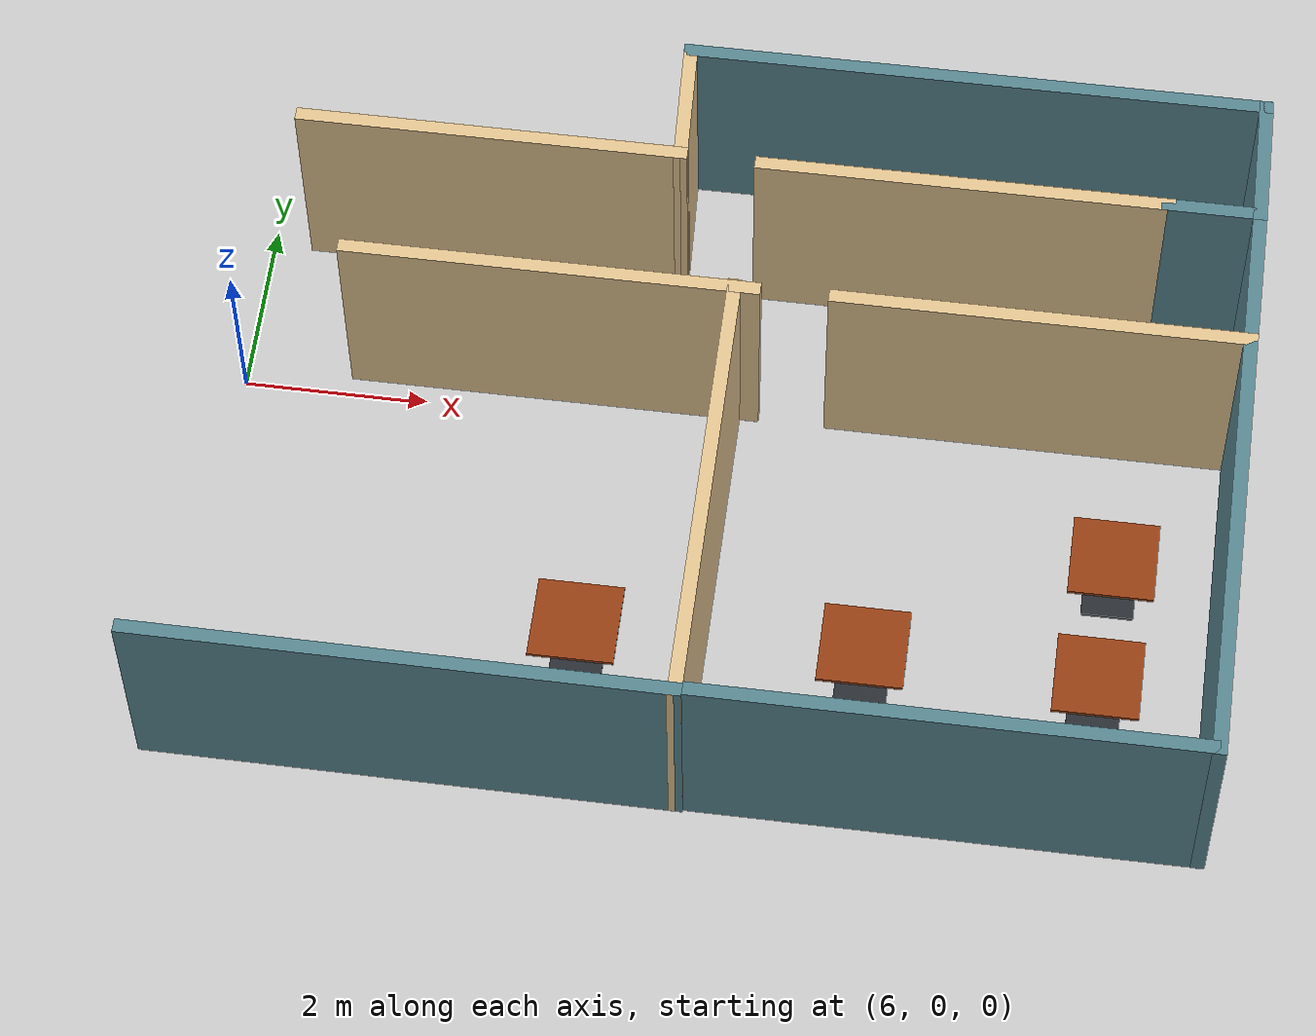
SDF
<sdf version="1.6">
 <world name="default">
  <model name="inco_planta_baja_0">
   <link name="Wall_126">
    <pose>9.78501 1.72965 0 0 -0 1.5708</pose>
    <visual name="Wall_126_Visual">
     <pose>0 0 1.25 0 -0 0</pose>
     <geometry><box><size>1.75 0.15 2.5</size></box></geometry>
     <material>
      <ambient>0.22 0.31 0.34 1</ambient>
      <diffuse>0.34 0.52 0.56 1</diffuse>
      <specular>0.05 0.05 0.05 1</specular>
      <emissive>0 0 0 1</emissive>
     </material>
    </visual>
    <collision name="Wall_126_Collision">
     <pose>0 0 1.25 0 -0 0</pose>
     <geometry><box><size>1.75 0.15 2.5</size></box></geometry>
     <surface>
      <friction>
       <ode><mu>1</mu><mu2>1</mu2><fdir1>0 0 0</fdir1><slip1>0</slip1><slip2>0</slip2></ode>
       <torsional>
        <coefficient>1</coefficient>
        <patch_radius>0</patch_radius>
        <surface_radius>0</surface_radius>
        <use_patch_radius>1</use_patch_radius>
        <ode><slip>0</slip></ode>
       </torsional>
      </friction>
      <bounce><restitution_coefficient>0</restitution_coefficient><threshold>1e+06</threshold></bounce>
      <contact>
       <collide_without_contact>0</collide_without_contact>
       <collide_without_contact_bitmask>1</collide_without_contact_bitmask>
       <collide_bitmask>1</collide_bitmask>
       <ode>
        <soft_cfm>0</soft_cfm>
        <soft_erp>0.2</soft_erp>
        <kp>1e+13</kp>
        <kd>1</kd>
        <max_vel>0.01</max_vel>
        <min_depth>0</min_depth>
       </ode>
       <bullet>
        <split_impulse>1</split_impulse>
        <split_impulse_penetration_threshold>-0.01</split_impulse_penetration_threshold>
        <soft_cfm>0</soft_cfm>
        <soft_erp>0.2</soft_erp>
        <kp>1e+13</kp>
        <kd>1</kd>
       </bullet>
      </contact>
     </surface>
    </collision>
   </link>
   <link name="Wall_127">
    <pose>9.29747 2.53004 0 0 -0 3.1408</pose>
    <visual name="Wall_127_Visual">
     <pose>0 0 1.25 0 -0 0</pose>
     <geometry><box><size>1.12508 0.15 2.5</size></box></geometry>
     <material>
      <ambient>0.22 0.31 0.34 1</ambient>
      <diffuse>0.34 0.52 0.56 1</diffuse>
      <specular>0.05 0.05 0.05 1</specular>
      <emissive>0 0 0 1</emissive>
     </material>
    </visual>
    <collision name="Wall_127_Collision">
     <pose>0 0 1.25 0 -0 0</pose>
     <geometry><box><size>1.12508 0.15 2.5</size></box></geometry>
     <surface>
      <friction>
       <ode><mu>1</mu><mu2>1</mu2><fdir1>0 0 0</fdir1><slip1>0</slip1><slip2>0</slip2></ode>
       <torsional>
        <coefficient>1</coefficient>
        <patch_radius>0</patch_radius>
        <surface_radius>0</surface_radius>
        <use_patch_radius>1</use_patch_radius>
        <ode><slip>0</slip></ode>
       </torsional>
      </friction>
      <bounce><restitution_coefficient>0</restitution_coefficient><threshold>1e+06</threshold></bounce>
      <contact>
       <collide_without_contact>0</collide_without_contact>
       <collide_without_contact_bitmask>1</collide_without_contact_bitmask>
       <collide_bitmask>1</collide_bitmask>
       <ode>
        <soft_cfm>0</soft_cfm>
        <soft_erp>0.2</soft_erp>
        <kp>1e+13</kp>
        <kd>1</kd>
        <max_vel>0.01</max_vel>
        <min_depth>0</min_depth>
       </ode>
       <bullet>
        <split_impulse>1</split_impulse>
        <split_impulse_penetration_threshold>-0.01</split_impulse_penetration_threshold>
        <soft_cfm>0</soft_cfm>
        <soft_erp>0.2</soft_erp>
        <kp>1e+13</kp>
        <kd>1</kd>
       </bullet>
      </contact>
     </surface>
    </collision>
   </link>
   <link name="Wall_132">
    <pose>1.56221 -3.9268 0 0 0 -0.003633</pose>
    <visual name="Wall_132_Visual">
     <pose>0 0 1.25 0 -0 0</pose>
     <geometry><box><size>5.75 0.15 2.5</size></box></geometry>
     <material>
      <ambient>0.22 0.31 0.34 1</ambient>
      <diffuse>0.34 0.52 0.56 1</diffuse>
      <specular>0.05 0.05 0.05 1</specular>
      <emissive>0 0 0 1</emissive>
     </material>
    </visual>
    <collision name="Wall_132_Collision">
     <pose>0 0 1.25 0 -0 0</pose>
     <geometry><box><size>5.75 0.15 2.5</size></box></geometry>
     <surface>
      <friction>
       <ode><mu>1</mu><mu2>1</mu2><fdir1>0 0 0</fdir1><slip1>0</slip1><slip2>0</slip2></ode>
       <torsional>
        <coefficient>1</coefficient>
        <patch_radius>0</patch_radius>
        <surface_radius>0</surface_radius>
        <use_patch_radius>1</use_patch_radius>
        <ode><slip>0</slip></ode>
       </torsional>
      </friction>
      <bounce><restitution_coefficient>0</restitution_coefficient><threshold>1e+06</threshold></bounce>
      <contact>
       <collide_without_contact>0</collide_without_contact>
       <collide_without_contact_bitmask>1</collide_without_contact_bitmask>
       <collide_bitmask>1</collide_bitmask>
       <ode>
        <soft_cfm>0</soft_cfm>
        <soft_erp>0.2</soft_erp>
        <kp>1e+13</kp>
        <kd>1</kd>
        <max_vel>0.01</max_vel>
        <min_depth>0</min_depth>
       </ode>
       <bullet>
        <split_impulse>1</split_impulse>
        <split_impulse_penetration_threshold>-0.01</split_impulse_penetration_threshold>
        <soft_cfm>0</soft_cfm>
        <soft_erp>0.2</soft_erp>
        <kp>1e+13</kp>
        <kd>1</kd>
       </bullet>
      </contact>
     </surface>
    </collision>
   </link>
   <link name="Wall_133">
    <pose>4.36221 -1.5018 0 0 -0 1.5708</pose>
    <visual name="Wall_133_Visual">
     <pose>0 0 1.25 0 -0 0</pose>
     <geometry><box><size>5.02034 0.15 2.5</size></box></geometry>
     <material>
      <ambient>0.55 0.48 0.36 1</ambient>
      <diffuse>0.88 0.76 0.56 1</diffuse>
      <specular>0.05 0.05 0.05 1</specular>
      <emissive>0 0 0 1</emissive>
     </material>
    </visual>
    <collision name="Wall_133_Collision">
     <pose>0 0 1.25 0 -0 0</pose>
     <geometry><box><size>5.02034 0.15 2.5</size></box></geometry>
     <surface>
      <friction>
       <ode><mu>1</mu><mu2>1</mu2><fdir1>0 0 0</fdir1><slip1>0</slip1><slip2>0</slip2></ode>
       <torsional>
        <coefficient>1</coefficient>
        <patch_radius>0</patch_radius>
        <surface_radius>0</surface_radius>
        <use_patch_radius>1</use_patch_radius>
        <ode><slip>0</slip></ode>
       </torsional>
      </friction>
      <bounce><restitution_coefficient>0</restitution_coefficient><threshold>1e+06</threshold></bounce>
      <contact>
       <collide_without_contact>0</collide_without_contact>
       <collide_without_contact_bitmask>1</collide_without_contact_bitmask>
       <collide_bitmask>1</collide_bitmask>
       <ode>
        <soft_cfm>0</soft_cfm>
        <soft_erp>0.2</soft_erp>
        <kp>1e+13</kp>
        <kd>1</kd>
        <max_vel>0.01</max_vel>
        <min_depth>0</min_depth>
       </ode>
       <bullet>
        <split_impulse>1</split_impulse>
        <split_impulse_penetration_threshold>-0.01</split_impulse_penetration_threshold>
        <soft_cfm>0</soft_cfm>
        <soft_erp>0.2</soft_erp>
        <kp>1e+13</kp>
        <kd>1</kd>
       </bullet>
      </contact>
     </surface>
    </collision>
   </link>
   <link name="Wall_135">
    <pose>7.03721 -3.91663 0 0 -0 0</pose>
    <visual name="Wall_135_Visual">
     <pose>0 0 1.25 0 -0 0</pose>
     <geometry><box><size>5.5 0.15 2.5</size></box></geometry>
     <material>
      <ambient>0.22 0.31 0.34 1</ambient>
      <diffuse>0.34 0.52 0.56 1</diffuse>
      <specular>0.05 0.05 0.05 1</specular>
      <emissive>0 0 0 1</emissive>
     </material>
    </visual>
    <collision name="Wall_135_Collision">
     <pose>0 0 1.25 0 -0 0</pose>
     <geometry><box><size>5.5 0.15 2.5</size></box></geometry>
     <surface>
      <friction>
       <ode><mu>1</mu><mu2>1</mu2><fdir1>0 0 0</fdir1><slip1>0</slip1><slip2>0</slip2></ode>
       <torsional>
        <coefficient>1</coefficient>
        <patch_radius>0</patch_radius>
        <surface_radius>0</surface_radius>
        <use_patch_radius>1</use_patch_radius>
        <ode><slip>0</slip></ode>
       </torsional>
      </friction>
      <bounce><restitution_coefficient>0</restitution_coefficient><threshold>1e+06</threshold></bounce>
      <contact>
       <collide_without_contact>0</collide_without_contact>
       <collide_without_contact_bitmask>1</collide_without_contact_bitmask>
       <collide_bitmask>1</collide_bitmask>
       <ode>
        <soft_cfm>0</soft_cfm>
        <soft_erp>0.2</soft_erp>
        <kp>1e+13</kp>
        <kd>1</kd>
        <max_vel>0.01</max_vel>
        <min_depth>0</min_depth>
       </ode>
       <bullet>
        <split_impulse>1</split_impulse>
        <split_impulse_penetration_threshold>-0.01</split_impulse_penetration_threshold>
        <soft_cfm>0</soft_cfm>
        <soft_erp>0.2</soft_erp>
        <kp>1e+13</kp>
        <kd>1</kd>
       </bullet>
      </contact>
     </surface>
    </collision>
   </link>
   <link name="Wall_137">
    <pose>9.78501 -1.49535 0 0 0 -1.5708</pose>
    <visual name="Wall_137_Visual">
     <pose>0 0 1.25 0 -0 0</pose>
     <geometry><box><size>5 0.15 2.5</size></box></geometry>
     <material>
      <ambient>0.22 0.31 0.34 1</ambient>
      <diffuse>0.34 0.52 0.56 1</diffuse>
      <specular>0.05 0.05 0.05 1</specular>
      <emissive>0 0 0 1</emissive>
     </material>
    </visual>
    <collision name="Wall_137_Collision">
     <pose>0 0 1.25 0 -0 0</pose>
     <geometry><box><size>5 0.15 2.5</size></box></geometry>
     <surface>
      <friction>
       <ode><mu>1</mu><mu2>1</mu2><fdir1>0 0 0</fdir1><slip1>0</slip1><slip2>0</slip2></ode>
       <torsional>
        <coefficient>1</coefficient>
        <patch_radius>0</patch_radius>
        <surface_radius>0</surface_radius>
        <use_patch_radius>1</use_patch_radius>
        <ode><slip>0</slip></ode>
       </torsional>
      </friction>
      <bounce><restitution_coefficient>0</restitution_coefficient><threshold>1e+06</threshold></bounce>
      <contact>
       <collide_without_contact>0</collide_without_contact>
       <collide_without_contact_bitmask>1</collide_without_contact_bitmask>
       <collide_bitmask>1</collide_bitmask>
       <ode>
        <soft_cfm>0</soft_cfm>
        <soft_erp>0.2</soft_erp>
        <kp>1e+13</kp>
        <kd>1</kd>
        <max_vel>0.01</max_vel>
        <min_depth>0</min_depth>
       </ode>
       <bullet>
        <split_impulse>1</split_impulse>
        <split_impulse_penetration_threshold>-0.01</split_impulse_penetration_threshold>
        <soft_cfm>0</soft_cfm>
        <soft_erp>0.2</soft_erp>
        <kp>1e+13</kp>
        <kd>1</kd>
       </bullet>
      </contact>
     </surface>
    </collision>
   </link>
   <link name="Wall_142">
    <pose>9.77456 3.23289 0 0 0 -1.55594</pose>
    <visual name="Wall_142_Visual">
     <pose>0 0 1.25 0 -0 0</pose>
     <geometry><box><size>1.55664 0.15 2.5</size></box></geometry>
     <material>
      <ambient>0.22 0.31 0.34 1</ambient>
      <diffuse>0.34 0.52 0.56 1</diffuse>
      <specular>0.05 0.05 0.05 1</specular>
      <emissive>0 0 0 1</emissive>
     </material>
    </visual>
    <collision name="Wall_142_Collision">
     <pose>0 0 1.25 0 -0 0</pose>
     <geometry><box><size>1.55664 0.15 2.5</size></box></geometry>
     <surface>
      <friction>
       <ode><mu>1</mu><mu2>1</mu2><fdir1>0 0 0</fdir1><slip1>0</slip1><slip2>0</slip2></ode>
       <torsional>
        <coefficient>1</coefficient>
        <patch_radius>0</patch_radius>
        <surface_radius>0</surface_radius>
        <use_patch_radius>1</use_patch_radius>
        <ode><slip>0</slip></ode>
       </torsional>
      </friction>
      <bounce><restitution_coefficient>0</restitution_coefficient><threshold>1e+06</threshold></bounce>
      <contact>
       <collide_without_contact>0</collide_without_contact>
       <collide_without_contact_bitmask>1</collide_without_contact_bitmask>
       <collide_bitmask>1</collide_bitmask>
       <ode>
        <soft_cfm>0</soft_cfm>
        <soft_erp>0.2</soft_erp>
        <kp>1e+13</kp>
        <kd>1</kd>
        <max_vel>0.01</max_vel>
        <min_depth>0</min_depth>
       </ode>
       <bullet>
        <split_impulse>1</split_impulse>
        <split_impulse_penetration_threshold>-0.01</split_impulse_penetration_threshold>
        <soft_cfm>0</soft_cfm>
        <soft_erp>0.2</soft_erp>
        <kp>1e+13</kp>
        <kd>1</kd>
       </bullet>
      </contact>
     </surface>
    </collision>
   </link>
   <link name="Wall_152">
    <pose>3.54865 3.23885 0 0 0 -1.52408</pose>
    <visual name="Wall_152_Visual">
     <pose>0 0 1.25 0 -0 0</pose>
     <geometry><box><size>1.52088 0.15 2.5</size></box></geometry>
     <material>
      <ambient>0.55 0.48 0.36 1</ambient>
      <diffuse>0.88 0.76 0.56 1</diffuse>
      <specular>0.05 0.05 0.05 1</specular>
      <emissive>0 0 0 1</emissive>
     </material>
    </visual>
    <collision name="Wall_152_Collision">
     <pose>0 0 1.25 0 -0 0</pose>
     <geometry><box><size>1.52088 0.15 2.5</size></box></geometry>
     <surface>
      <friction>
       <ode><mu>1</mu><mu2>1</mu2><fdir1>0 0 0</fdir1><slip1>0</slip1><slip2>0</slip2></ode>
       <torsional>
        <coefficient>1</coefficient>
        <patch_radius>0</patch_radius>
        <surface_radius>0</surface_radius>
        <use_patch_radius>1</use_patch_radius>
        <ode><slip>0</slip></ode>
       </torsional>
      </friction>
      <bounce><restitution_coefficient>0</restitution_coefficient><threshold>1e+06</threshold></bounce>
      <contact>
       <collide_without_contact>0</collide_without_contact>
       <collide_without_contact_bitmask>1</collide_without_contact_bitmask>
       <collide_bitmask>1</collide_bitmask>
       <ode>
        <soft_cfm>0</soft_cfm>
        <soft_erp>0.2</soft_erp>
        <kp>1e+13</kp>
        <kd>1</kd>
        <max_vel>0.01</max_vel>
        <min_depth>0</min_depth>
       </ode>
       <bullet>
        <split_impulse>1</split_impulse>
        <split_impulse_penetration_threshold>-0.01</split_impulse_penetration_threshold>
        <soft_cfm>0</soft_cfm>
        <soft_erp>0.2</soft_erp>
        <kp>1e+13</kp>
        <kd>1</kd>
       </bullet>
      </contact>
     </surface>
    </collision>
   </link>
   <link name="Wall_154">
    <pose>6.64038 3.92984 0 0 -0 0.002015</pose>
    <visual name="Wall_154_Visual">
     <pose>0 0 1.25 0 -0 0</pose>
     <geometry><box><size>6.39747 0.15 2.5</size></box></geometry>
     <material>
      <ambient>0.22 0.31 0.34 1</ambient>
      <diffuse>0.34 0.52 0.56 1</diffuse>
      <specular>0.05 0.05 0.05 1</specular>
      <emissive>0 0 0 1</emissive>
     </material>
    </visual>
    <collision name="Wall_154_Collision">
     <pose>0 0 1.25 0 -0 0</pose>
     <geometry><box><size>6.39747 0.15 2.5</size></box></geometry>
     <surface>
      <friction>
       <ode><mu>1</mu><mu2>1</mu2><fdir1>0 0 0</fdir1><slip1>0</slip1><slip2>0</slip2></ode>
       <torsional>
        <coefficient>1</coefficient>
        <patch_radius>0</patch_radius>
        <surface_radius>0</surface_radius>
        <use_patch_radius>1</use_patch_radius>
        <ode><slip>0</slip></ode>
       </torsional>
      </friction>
      <bounce><restitution_coefficient>0</restitution_coefficient><threshold>1e+06</threshold></bounce>
      <contact>
       <collide_without_contact>0</collide_without_contact>
       <collide_without_contact_bitmask>1</collide_without_contact_bitmask>
       <collide_bitmask>1</collide_bitmask>
       <ode>
        <soft_cfm>0</soft_cfm>
        <soft_erp>0.2</soft_erp>
        <kp>1e+13</kp>
        <kd>1</kd>
        <max_vel>0.01</max_vel>
        <min_depth>0</min_depth>
       </ode>
       <bullet>
        <split_impulse>1</split_impulse>
        <split_impulse_penetration_threshold>-0.01</split_impulse_penetration_threshold>
        <soft_cfm>0</soft_cfm>
        <soft_erp>0.2</soft_erp>
        <kp>1e+13</kp>
        <kd>1</kd>
       </bullet>
      </contact>
     </surface>
    </collision>
   </link>
   <link name="Wall_24">
    <pose>2.39116 0.91908 0 0 -0 0</pose>
    <visual name="Wall_24_Visual">
     <pose>0 0 1.25 0 -0 0</pose>
     <geometry><box><size>4.5 0.15 2.5</size></box></geometry>
     <material>
      <ambient>0.55 0.48 0.36 1</ambient>
      <diffuse>0.88 0.76 0.56 1</diffuse>
      <specular>0.05 0.05 0.05 1</specular>
      <emissive>0 0 0 1</emissive>
     </material>
    </visual>
    <collision name="Wall_24_Collision">
     <pose>0 0 1.25 0 -0 0</pose>
     <geometry><box><size>4.5 0.15 2.5</size></box></geometry>
     <surface>
      <friction>
       <ode><mu>1</mu><mu2>1</mu2><fdir1>0 0 0</fdir1><slip1>0</slip1><slip2>0</slip2></ode>
       <torsional>
        <coefficient>1</coefficient>
        <patch_radius>0</patch_radius>
        <surface_radius>0</surface_radius>
        <use_patch_radius>1</use_patch_radius>
        <ode><slip>0</slip></ode>
       </torsional>
      </friction>
      <bounce><restitution_coefficient>0</restitution_coefficient><threshold>1e+06</threshold></bounce>
      <contact>
       <collide_without_contact>0</collide_without_contact>
       <collide_without_contact_bitmask>1</collide_without_contact_bitmask>
       <collide_bitmask>1</collide_bitmask>
       <ode>
        <soft_cfm>0</soft_cfm>
        <soft_erp>0.2</soft_erp>
        <kp>1e+13</kp>
        <kd>1</kd>
        <max_vel>0.01</max_vel>
        <min_depth>0</min_depth>
       </ode>
       <bullet>
        <split_impulse>1</split_impulse>
        <split_impulse_penetration_threshold>-0.01</split_impulse_penetration_threshold>
        <soft_cfm>0</soft_cfm>
        <soft_erp>0.2</soft_erp>
        <kp>1e+13</kp>
        <kd>1</kd>
       </bullet>
      </contact>
     </surface>
    </collision>
   </link>
   <link name="Wall_26">
    <pose>1.53066 2.55416 0 0 -0 0</pose>
    <visual name="Wall_26_Visual">
     <pose>0 0 1.25 0 -0 0</pose>
     <geometry><box><size>4.25 0.15 2.5</size></box></geometry>
     <material>
      <ambient>0.55 0.48 0.36 1</ambient>
      <diffuse>0.88 0.76 0.56 1</diffuse>
      <specular>0.05 0.05 0.05 1</specular>
      <emissive>0 0 0 1</emissive>
     </material>
    </visual>
    <collision name="Wall_26_Collision">
     <pose>0 0 1.25 0 -0 0</pose>
     <geometry><box><size>4.25 0.15 2.5</size></box></geometry>
     <surface>
      <friction>
       <ode><mu>1</mu><mu2>1</mu2><fdir1>0 0 0</fdir1><slip1>0</slip1><slip2>0</slip2></ode>
       <torsional>
        <coefficient>1</coefficient>
        <patch_radius>0</patch_radius>
        <surface_radius>0</surface_radius>
        <use_patch_radius>1</use_patch_radius>
        <ode><slip>0</slip></ode>
       </torsional>
      </friction>
      <bounce><restitution_coefficient>0</restitution_coefficient><threshold>1e+06</threshold></bounce>
      <contact>
       <collide_without_contact>0</collide_without_contact>
       <collide_without_contact_bitmask>1</collide_without_contact_bitmask>
       <collide_bitmask>1</collide_bitmask>
       <ode>
        <soft_cfm>0</soft_cfm>
        <soft_erp>0.2</soft_erp>
        <kp>1e+13</kp>
        <kd>1</kd>
        <max_vel>0.01</max_vel>
        <min_depth>0</min_depth>
       </ode>
       <bullet>
        <split_impulse>1</split_impulse>
        <split_impulse_penetration_threshold>-0.01</split_impulse_penetration_threshold>
        <soft_cfm>0</soft_cfm>
        <soft_erp>0.2</soft_erp>
        <kp>1e+13</kp>
        <kd>1</kd>
       </bullet>
      </contact>
     </surface>
    </collision>
   </link>
   <link name="Wall_29">
    <pose>7.61001 0.92965 0 0 -0 0</pose>
    <visual name="Wall_29_Visual">
     <pose>0 0 1.25 0 -0 0</pose>
     <geometry><box><size>4.5 0.15 2.5</size></box></geometry>
     <material>
      <ambient>0.55 0.48 0.36 1</ambient>
      <diffuse>0.88 0.76 0.56 1</diffuse>
      <specular>0.05 0.05 0.05 1</specular>
      <emissive>0 0 0 1</emissive>
     </material>
    </visual>
    <collision name="Wall_29_Collision">
     <pose>0 0 1.25 0 -0 0</pose>
     <geometry><box><size>4.5 0.15 2.5</size></box></geometry>
     <surface>
      <friction>
       <ode><mu>1</mu><mu2>1</mu2><fdir1>0 0 0</fdir1><slip1>0</slip1><slip2>0</slip2></ode>
       <torsional>
        <coefficient>1</coefficient>
        <patch_radius>0</patch_radius>
        <surface_radius>0</surface_radius>
        <use_patch_radius>1</use_patch_radius>
        <ode><slip>0</slip></ode>
       </torsional>
      </friction>
      <bounce><restitution_coefficient>0</restitution_coefficient><threshold>1e+06</threshold></bounce>
      <contact>
       <collide_without_contact>0</collide_without_contact>
       <collide_without_contact_bitmask>1</collide_without_contact_bitmask>
       <collide_bitmask>1</collide_bitmask>
       <ode>
        <soft_cfm>0</soft_cfm>
        <soft_erp>0.2</soft_erp>
        <kp>1e+13</kp>
        <kd>1</kd>
        <max_vel>0.01</max_vel>
        <min_depth>0</min_depth>
       </ode>
       <bullet>
        <split_impulse>1</split_impulse>
        <split_impulse_penetration_threshold>-0.01</split_impulse_penetration_threshold>
        <soft_cfm>0</soft_cfm>
        <soft_erp>0.2</soft_erp>
        <kp>1e+13</kp>
        <kd>1</kd>
       </bullet>
      </contact>
     </surface>
    </collision>
   </link>
   <link name="Wall_31">
    <pose>6.63493 2.53043 0 0 -0 0</pose>
    <visual name="Wall_31_Visual">
     <pose>0 0 1.25 0 -0 0</pose>
     <geometry><box><size>4.5 0.15 2.5</size></box></geometry>
     <material>
      <ambient>0.55 0.48 0.36 1</ambient>
      <diffuse>0.88 0.76 0.56 1</diffuse>
      <specular>0.05 0.05 0.05 1</specular>
      <emissive>0 0 0 1</emissive>
     </material>
    </visual>
    <collision name="Wall_31_Collision">
     <pose>0 0 1.25 0 -0 0</pose>
     <geometry><box><size>4.5 0.15 2.5</size></box></geometry>
     <surface>
      <friction>
       <ode><mu>1</mu><mu2>1</mu2><fdir1>0 0 0</fdir1><slip1>0</slip1><slip2>0</slip2></ode>
       <torsional>
        <coefficient>1</coefficient>
        <patch_radius>0</patch_radius>
        <surface_radius>0</surface_radius>
        <use_patch_radius>1</use_patch_radius>
        <ode><slip>0</slip></ode>
       </torsional>
      </friction>
      <bounce><restitution_coefficient>0</restitution_coefficient><threshold>1e+06</threshold></bounce>
      <contact>
       <collide_without_contact>0</collide_without_contact>
       <collide_without_contact_bitmask>1</collide_without_contact_bitmask>
       <collide_bitmask>1</collide_bitmask>
       <ode>
        <soft_cfm>0</soft_cfm>
        <soft_erp>0.2</soft_erp>
        <kp>1e+13</kp>
        <kd>1</kd>
        <max_vel>0.01</max_vel>
        <min_depth>0</min_depth>
       </ode>
       <bullet>
        <split_impulse>1</split_impulse>
        <split_impulse_penetration_threshold>-0.01</split_impulse_penetration_threshold>
        <soft_cfm>0</soft_cfm>
        <soft_erp>0.2</soft_erp>
        <kp>1e+13</kp>
        <kd>1</kd>
       </bullet>
      </contact>
     </surface>
    </collision>
   </link>
   <static>1</static>
   <pose>6.99641 -0.640898 0 0 -0 0</pose>
  </model>
  <model name="cafe_table">
   <static>1</static>
   <link name="link">
    <collision name="surface">
     <pose>0 0 0.755 0 -0 0</pose>
     <geometry><box><size>0.913 0.913 0.04</size></box></geometry>
    </collision>
    <collision name="column">
     <pose>0 0 0.37 0 -0 0</pose>
     <geometry><box><size>0.042 0.042 0.74</size></box></geometry>
    </collision>
    <collision name="base">
     <pose>0 0 0.02 0 -0 0</pose>
     <geometry><box><size>0.56 0.56 0.04</size></box></geometry>
    </collision>
    <visual name="styled_surface">
     <pose>0 0 0.755 0 0 0</pose>
     <geometry><box><size>0.913 0.913 0.04</size></box></geometry>
     <material>
      <ambient>0.20 0.08 0.025 1</ambient>
      <diffuse>0.58 0.24 0.07 1</diffuse>
      <specular>0.12 0.09 0.06 1</specular>
      <emissive>0 0 0 1</emissive>
     </material>
    </visual>
    <visual name="styled_column">
     <pose>0 0 0.37 0 0 0</pose>
     <geometry><box><size>0.042 0.042 0.74</size></box></geometry>
     <material>
      <ambient>0.08 0.09 0.10 1</ambient>
      <diffuse>0.16 0.18 0.20 1</diffuse>
      <specular>0.35 0.35 0.35 1</specular>
      <emissive>0 0 0 1</emissive>
     </material>
    </visual>
    <visual name="styled_base">
     <pose>0 0 0.02 0 0 0</pose>
     <geometry><box><size>0.56 0.56 0.04</size></box></geometry>
     <material>
      <ambient>0.08 0.09 0.10 1</ambient>
      <diffuse>0.16 0.18 0.20 1</diffuse>
      <specular>0.35 0.35 0.35 1</specular>
      <emissive>0 0 0 1</emissive>
     </material>
    </visual>
   </link>
   <pose>13.1152 -2.8797 0 0 -0 0</pose>
  </model>
  <model name="cafe_table_0">
   <static>1</static>
   <link name="link">
    <collision name="surface">
     <pose>0 0 0.755 0 -0 0</pose>
     <geometry><box><size>0.913 0.913 0.04</size></box></geometry>
    </collision>
    <collision name="column">
     <pose>0 0 0.37 0 -0 0</pose>
     <geometry><box><size>0.042 0.042 0.74</size></box></geometry>
    </collision>
    <collision name="base">
     <pose>0 0 0.02 0 -0 0</pose>
     <geometry><box><size>0.56 0.56 0.04</size></box></geometry>
    </collision>
    <visual name="styled_surface">
     <pose>0 0 0.755 0 0 0</pose>
     <geometry><box><size>0.913 0.913 0.04</size></box></geometry>
     <material>
      <ambient>0.20 0.08 0.025 1</ambient>
      <diffuse>0.58 0.24 0.07 1</diffuse>
      <specular>0.12 0.09 0.06 1</specular>
      <emissive>0 0 0 1</emissive>
     </material>
    </visual>
    <visual name="styled_column">
     <pose>0 0 0.37 0 0 0</pose>
     <geometry><box><size>0.042 0.042 0.74</size></box></geometry>
     <material>
      <ambient>0.08 0.09 0.10 1</ambient>
      <diffuse>0.16 0.18 0.20 1</diffuse>
      <specular>0.35 0.35 0.35 1</specular>
      <emissive>0 0 0 1</emissive>
     </material>
    </visual>
    <visual name="styled_base">
     <pose>0 0 0.02 0 0 0</pose>
     <geometry><box><size>0.56 0.56 0.04</size></box></geometry>
     <material>
      <ambient>0.08 0.09 0.10 1</ambient>
      <diffuse>0.16 0.18 0.20 1</diffuse>
      <specular>0.35 0.35 0.35 1</specular>
      <emissive>0 0 0 1</emissive>
     </material>
    </visual>
   </link>
   <pose>15.5732 -2.93937 0 0 -0 0</pose>
  </model>
  <model name="cafe_table_1">
   <static>1</static>
   <link name="link">
    <collision name="surface">
     <pose>0 0 0.755 0 -0 0</pose>
     <geometry><box><size>0.913 0.913 0.04</size></box></geometry>
    </collision>
    <collision name="column">
     <pose>0 0 0.37 0 -0 0</pose>
     <geometry><box><size>0.042 0.042 0.74</size></box></geometry>
    </collision>
    <collision name="base">
     <pose>0 0 0.02 0 -0 0</pose>
     <geometry><box><size>0.56 0.56 0.04</size></box></geometry>
    </collision>
    <visual name="styled_surface">
     <pose>0 0 0.755 0 0 0</pose>
     <geometry><box><size>0.913 0.913 0.04</size></box></geometry>
     <material>
      <ambient>0.20 0.08 0.025 1</ambient>
      <diffuse>0.58 0.24 0.07 1</diffuse>
      <specular>0.12 0.09 0.06 1</specular>
      <emissive>0 0 0 1</emissive>
     </material>
    </visual>
    <visual name="styled_column">
     <pose>0 0 0.37 0 0 0</pose>
     <geometry><box><size>0.042 0.042 0.74</size></box></geometry>
     <material>
      <ambient>0.08 0.09 0.10 1</ambient>
      <diffuse>0.16 0.18 0.20 1</diffuse>
      <specular>0.35 0.35 0.35 1</specular>
      <emissive>0 0 0 1</emissive>
     </material>
    </visual>
    <visual name="styled_base">
     <pose>0 0 0.02 0 0 0</pose>
     <geometry><box><size>0.56 0.56 0.04</size></box></geometry>
     <material>
      <ambient>0.08 0.09 0.10 1</ambient>
      <diffuse>0.16 0.18 0.20 1</diffuse>
      <specular>0.35 0.35 0.35 1</specular>
      <emissive>0 0 0 1</emissive>
     </material>
    </visual>
   </link>
   <pose>15.6213 -1.5045 0 0 -0 0</pose>
  </model>
  <model name="cafe_table_2">
   <static>1</static>
   <link name="link">
    <collision name="surface">
     <pose>0 0 0.755 0 -0 0</pose>
     <geometry><box><size>0.913 0.913 0.04</size></box></geometry>
    </collision>
    <collision name="column">
     <pose>0 0 0.37 0 -0 0</pose>
     <geometry><box><size>0.042 0.042 0.74</size></box></geometry>
    </collision>
    <collision name="base">
     <pose>0 0 0.02 0 -0 0</pose>
     <geometry><box><size>0.56 0.56 0.04</size></box></geometry>
    </collision>
    <visual name="styled_surface">
     <pose>0 0 0.755 0 0 0</pose>
     <geometry><box><size>0.913 0.913 0.04</size></box></geometry>
     <material>
      <ambient>0.20 0.08 0.025 1</ambient>
      <diffuse>0.58 0.24 0.07 1</diffuse>
      <specular>0.12 0.09 0.06 1</specular>
      <emissive>0 0 0 1</emissive>
     </material>
    </visual>
    <visual name="styled_column">
     <pose>0 0 0.37 0 0 0</pose>
     <geometry><box><size>0.042 0.042 0.74</size></box></geometry>
     <material>
      <ambient>0.08 0.09 0.10 1</ambient>
      <diffuse>0.16 0.18 0.20 1</diffuse>
      <specular>0.35 0.35 0.35 1</specular>
      <emissive>0 0 0 1</emissive>
     </material>
    </visual>
    <visual name="styled_base">
     <pose>0 0 0.02 0 0 0</pose>
     <geometry><box><size>0.56 0.56 0.04</size></box></geometry>
     <material>
      <ambient>0.08 0.09 0.10 1</ambient>
      <diffuse>0.16 0.18 0.20 1</diffuse>
      <specular>0.35 0.35 0.35 1</specular>
      <emissive>0 0 0 1</emissive>
     </material>
    </visual>
   </link>
   <pose>10.0945 -2.9588 0 0 -0 0</pose>
  </model>
 </world>
</sdf>
